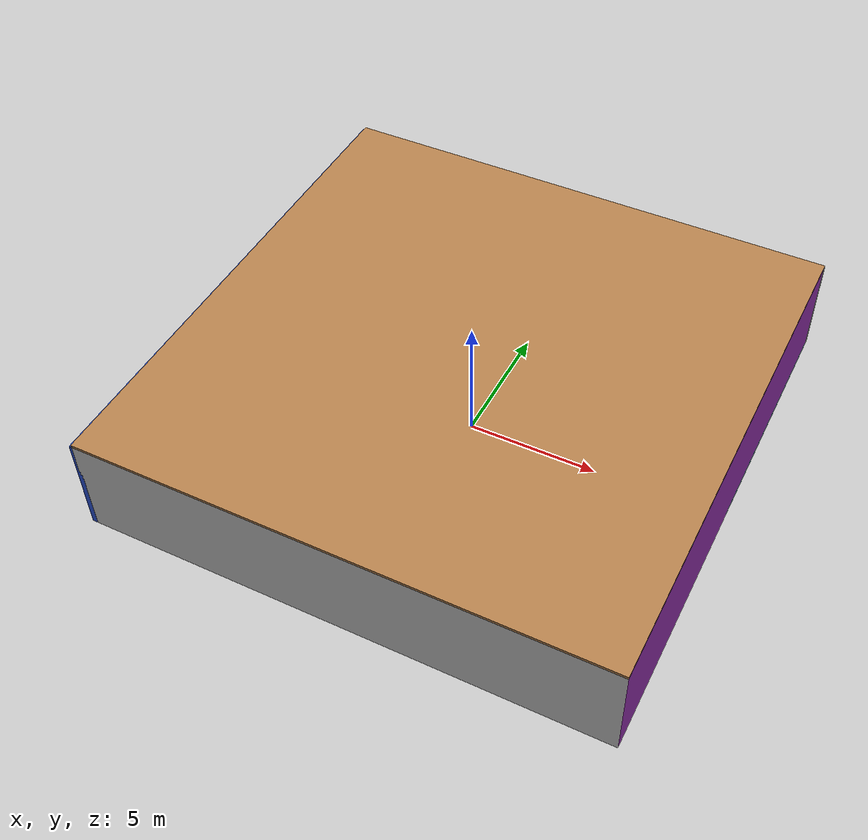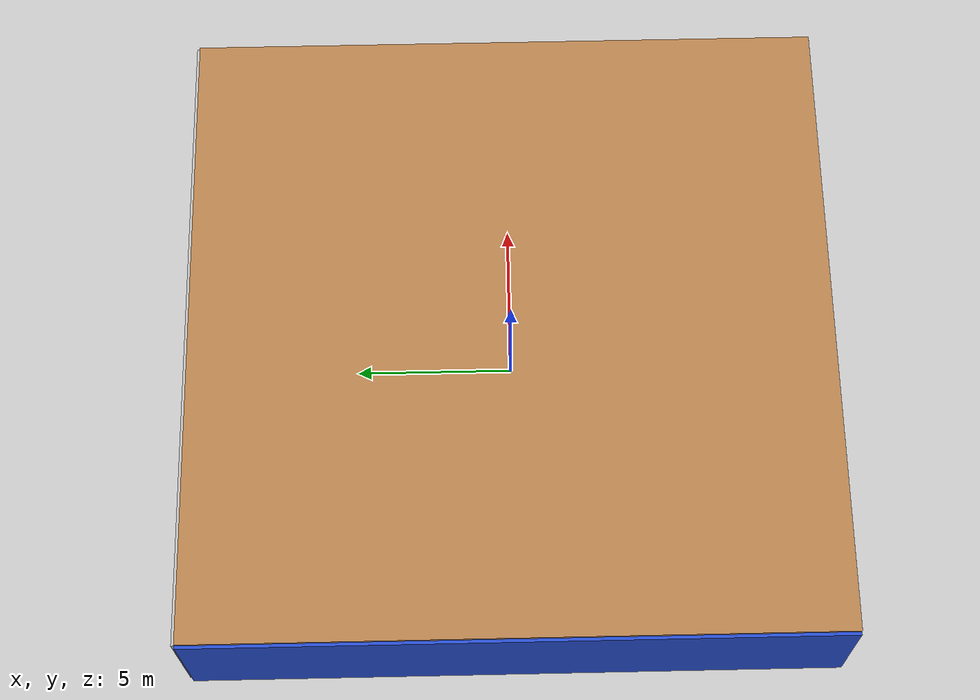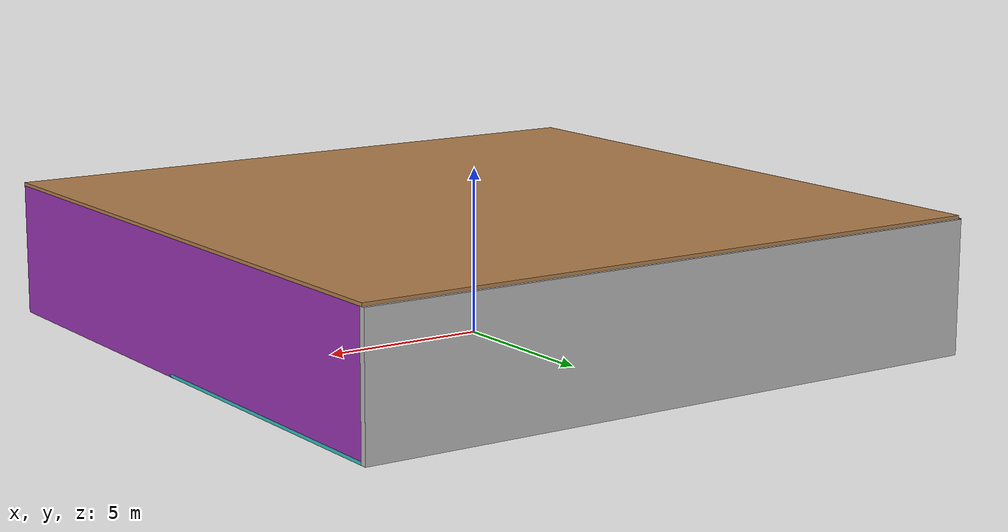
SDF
<sdf version="1.4">
 <world name="default">
  <physics type="ode">
   <max_step_size>0.001</max_step_size>
   <real_time_factor>1</real_time_factor>
   <real_time_update_rate>1000</real_time_update_rate>
   <gravity>0 0 -9.8</gravity>
  </physics>
  <scene><ambient>0.4 0.4 0.4 1</ambient><background>0.7 0.7 0.7 1</background><shadows>1</shadows></scene>
  <model name="Surrounding">
   <static>1</static>
   <link name="Ceiling">
    <collision name="Ceiling_Collision"><geometry><box><size>20 20 0.1</size></box></geometry></collision>
    <visual name="Ceiling_Visual">
     <geometry><box><size>20 20 0.1</size></box></geometry>
     <material>
      <script><uri>file://media/materials/scripts/gazebo.material</uri><name>Gazebo/Wood</name></script>
     </material>
    </visual>
    <pose>0 0 4.05 0 0 0</pose>
   </link>
   <link name="Wall_South">
    <collision name="Wall_South_Collision">
     <geometry><box><size>20 0 4</size></box></geometry>
     <pose>0 0 2 0 -0 0</pose>
    </collision>
    <visual name="Wall_South_Visual">
     <pose>0 0 2 0 -0 0</pose>
     <geometry><box><size>20 0 4</size></box></geometry>
     <material>
      <script><uri>file://media/materials/scripts/gazebo.material</uri><name>Gazebo/LightOn</name></script>
     </material>
    </visual>
    <velocity_decay><linear>0</linear><angular>0</angular></velocity_decay>
    <pose>0 -10 0 0 -0 0</pose>
   </link>
   <link name="Wall_East">
    <collision name="Wall_21_Collision">
     <geometry><box><size>20 0 4</size></box></geometry>
     <pose>0 0 2 0 -0 0</pose>
    </collision>
    <visual name="Wall_21_Visual">
     <pose>0 0 2 0 -0 0</pose>
     <geometry><box><size>20 0 4</size></box></geometry>
     <material>
      <script><uri>file://media/materials/scripts/gazebo.material</uri><name>Gazebo/PurpleGlow</name></script>
     </material>
    </visual>
    <velocity_decay><linear>0</linear><angular>0</angular></velocity_decay>
    <pose>10 0 0 0 -0 1.5708</pose>
   </link>
   <link name="Wall_North">
    <collision name="Wall_22_Collision">
     <geometry><box><size>20 0.2 4</size></box></geometry>
     <pose>0 0 2 0 -0 0</pose>
    </collision>
    <visual name="Wall_22_Visual">
     <pose>0 0 2 0 -0 0</pose>
     <geometry><box><size>20 0.2 4</size></box></geometry>
     <material>
      <script><uri>file://media/materials/scripts/gazebo.material</uri><name>Gazebo/LightOff</name></script>
     </material>
    </visual>
    <velocity_decay><linear>0</linear><angular>0</angular></velocity_decay>
    <pose>0 10 0 0 -0 0</pose>
   </link>
   <link name="Wall_West">
    <collision name="Wall_23_Collision">
     <geometry><box><size>20 0.2 4</size></box></geometry>
     <pose>0 0 2 0 -0 0</pose>
    </collision>
    <visual name="Wall_23_Visual">
     <pose>0 0 2 0 -0 0</pose>
     <geometry><box><size>20 0.2 4</size></box></geometry>
     <material>
      <script><uri>file://media/materials/scripts/gazebo.material</uri><name>Gazebo/BlueGlow</name></script>
     </material>
    </visual>
    <velocity_decay><linear>0</linear><angular>0</angular></velocity_decay>
    <pose>-10 0 0 0 0 -1.5708</pose>
   </link>
   <link name="Ground_link">
    <collision name="collision">
     <pose>0 0 .05 0 -0 0</pose>
     <geometry><box><size>20 20 0.1</size></box></geometry>
    </collision>
    <visual name="visual">
     <pose>0 0 .05 0 -0 0</pose>
     <geometry><box><size>20 20 0.1</size></box></geometry>
     <material>
      <script>
       <uri>file://media/materials/scripts/gazebo.material</uri>
       <name>Gazebo/TurquoiseGlowOutline</name>
      </script>
     </material>
    </visual>
   </link>
   <static>1</static>
  </model>
  <spherical_coordinates>
   <surface_model>EARTH_WGS84</surface_model>
   <latitude_deg>0</latitude_deg>
   <longitude_deg>0</longitude_deg>
   <elevation>0</elevation>
   <heading_deg>0</heading_deg>
  </spherical_coordinates>
  <light name="lightball_0" type="diffuse">
   <diffuse>0.8 0.8 0.8 1</diffuse>
   <specular>0.2 0.2 0.2 1</specular>
   <attenuation>
    <range>100</range>
    <constant>0.7</constant>
    <linear>0.01</linear>
    <quadratic>0.001</quadratic>
   </attenuation>
   <direction>-0.5 0.1 -0.9</direction>
   <pose>-8.79319051593 -7.8025188038 3.12151193378 0 0 0</pose>
  </light>
  <light name="lightball_1" type="diffuse">
   <diffuse>0.8 0.8 0.8 1</diffuse>
   <specular>0.2 0.2 0.2 1</specular>
   <attenuation>
    <range>100</range>
    <constant>0.7</constant>
    <linear>0.01</linear>
    <quadratic>0.001</quadratic>
   </attenuation>
   <direction>-0.5 0.1 -0.9</direction>
   <pose>9.99589423227 8.72781780622 3.70874215465 0 0 0</pose>
  </light>
  <light name="lightball_2" type="diffuse">
   <diffuse>0.8 0.8 0.8 1</diffuse>
   <specular>0.2 0.2 0.2 1</specular>
   <attenuation>
    <range>100</range>
    <constant>0.7</constant>
    <linear>0.01</linear>
    <quadratic>0.001</quadratic>
   </attenuation>
   <direction>-0.5 0.1 -0.9</direction>
   <pose>6.01592344058 5.72320222203 3.2559672629 0 0 0</pose>
  </light>
  <light name="lightball_3" type="diffuse">
   <diffuse>0.8 0.8 0.8 1</diffuse>
   <specular>0.2 0.2 0.2 1</specular>
   <attenuation>
    <range>100</range>
    <constant>0.7</constant>
    <linear>0.01</linear>
    <quadratic>0.001</quadratic>
   </attenuation>
   <direction>-0.5 0.1 -0.9</direction>
   <pose>-2.37035448176 7.7391056273 1.36925725904 0 0 0</pose>
  </light>
  <light name="lightball_4" type="diffuse">
   <diffuse>0.8 0.8 0.8 1</diffuse>
   <specular>0.2 0.2 0.2 1</specular>
   <attenuation>
    <range>100</range>
    <constant>0.7</constant>
    <linear>0.01</linear>
    <quadratic>0.001</quadratic>
   </attenuation>
   <direction>-0.5 0.1 -0.9</direction>
   <pose>8.24571197818 7.60956473737 0.770016695118 0 0 0</pose>
  </light>
  <light name="lightball_5" type="diffuse">
   <diffuse>0.8 0.8 0.8 1</diffuse>
   <specular>0.2 0.2 0.2 1</specular>
   <attenuation>
    <range>100</range>
    <constant>0.7</constant>
    <linear>0.01</linear>
    <quadratic>0.001</quadratic>
   </attenuation>
   <direction>-0.5 0.1 -0.9</direction>
   <pose>-0.0524424972443 5.76571239832 3.48627071058 0 0 0</pose>
  </light>
  <light name="lightball_6" type="diffuse">
   <diffuse>0.8 0.8 0.8 1</diffuse>
   <specular>0.2 0.2 0.2 1</specular>
   <attenuation>
    <range>100</range>
    <constant>0.7</constant>
    <linear>0.01</linear>
    <quadratic>0.001</quadratic>
   </attenuation>
   <direction>-0.5 0.1 -0.9</direction>
   <pose>-1.28951050033 9.47763632607 1.14647981529 0 0 0</pose>
  </light>
  <light name="lightball_7" type="diffuse">
   <diffuse>0.8 0.8 0.8 1</diffuse>
   <specular>0.2 0.2 0.2 1</specular>
   <attenuation>
    <range>100</range>
    <constant>0.7</constant>
    <linear>0.01</linear>
    <quadratic>0.001</quadratic>
   </attenuation>
   <direction>-0.5 0.1 -0.9</direction>
   <pose>-1.58358358944 -4.84800595057 3.06103249403 0 0 0</pose>
  </light>
  <include>
   <uri>model://robocup_3Dsim_goal</uri>
   <pose>-6.64061728792 -2.12787488536 0 0 0 2.64621970859</pose>
  </include>
  <include>
   <uri>model://textured_shapes</uri>
   <pose>2.24635023508 4.15416074662 0 0 0 1.74267086243</pose>
  </include>
  <include>
   <uri>model://construction_cone</uri>
   <pose>4.54262718231 -4.7277948785 0 0 0 1.71208500316</pose>
  </include>
  <include><uri>model://table</uri><pose>8.37994719992 -0.554686085138 0 0 0 1.50204809547</pose></include>
  <include><uri>model://cabinet</uri><pose>7.130175503 2.61627092961 0 0 0 2.03246296392</pose></include>
 </world>
</sdf>

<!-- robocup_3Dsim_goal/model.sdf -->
<sdf version="1.5">
  <model name="robocup_3d_goal">
    <static>true</static>
    <link name="left_post">
      <pose>0 1.05 0.45 0 0 0</pose>
      <collision name="collision">
        <geometry>
          <cylinder>
            <radius>0.05</radius>
            <length>0.9</length>
          </cylinder>
        </geometry>
      </collision>
      <visual name="visual">
        <geometry>
          <cylinder>
            <radius>0.05</radius>
            <length>0.9</length>
          </cylinder>
        </geometry>
        <material>
          <script>
            <uri>file://media/materials/scripts/gazebo.material</uri>
            <name>Gazebo/ZincYellow</name>
          </script>
        </material>
      </visual>
    </link>
    <link name="left_support_horiz_lower">
      <pose>0.30 1.05 0.01 0 0 0</pose>
      <collision name="collision">
        <geometry>
          <box>
            <size>0.50 0.02 0.02</size>
          </box>
        </geometry>
      </collision>
      <visual name="visual">
        <geometry>
          <box>
            <size>0.50 0.02 0.02</size>
          </box>
        </geometry>
        <material>
          <script>
            <uri>file://media/materials/scripts/gazebo.material</uri>
            <name>Gazebo/White</name>
          </script>
        </material>
      </visual>
    </link>
    <link name="left_support_horiz_upper">
      <pose>0.30 1.05 0.79 0 0 0</pose>
      <collision name="collision">
        <geometry>
          <box>
            <size>0.50 0.02 0.02</size>
          </box>
        </geometry>
      </collision>
      <visual name="visual">
        <geometry>
          <box>
            <size>0.50 0.02 0.02</size>
          </box>
        </geometry>
        <material>
          <script>
            <uri>file://media/materials/scripts/gazebo.material</uri>
            <name>Gazebo/White</name>
          </script>
        </material>
      </visual>
    </link>
    <link name="left_support_vertical">
      <pose>0.56 1.05 0.4 0 1.5708 0</pose>
      <collision name="collision">
        <geometry>
          <box>
            <size>0.80 0.02 0.02</size>
          </box>
        </geometry>
      </collision>
      <visual name="visual">
        <geometry>
          <box>
            <size>0.80 0.02 0.02</size>
          </box>
        </geometry>
        <material>
          <script>
            <uri>file://media/materials/scripts/gazebo.material</uri>
            <name>Gazebo/White</name>
          </script>
        </material>
      </visual>
    </link>
    <link name="right_support_horiz_lower">
      <pose>0.30 -1.05 0.01 0 0 0</pose>
      <collision name="collision">
        <geometry>
          <box>
            <size>0.50 0.02 0.02</size>
          </box>
        </geometry>
      </collision>
      <visual name="visual">
        <geometry>
          <box>
            <size>0.50 0.02 0.02</size>
          </box>
        </geometry>
        <material>
          <script>
            <uri>file://media/materials/scripts/gazebo.material</uri>
            <name>Gazebo/White</name>
          </script>
        </material>
      </visual>
    </link>
    <link name="right_support_horiz_upper">
      <pose>0.30 -1.05 0.79 0 0 0</pose>
      <collision name="collision">
        <geometry>
          <box>
            <size>0.50 0.02 0.02</size>
          </box>
        </geometry>
      </collision>
      <visual name="visual">
        <geometry>
          <box>
            <size>0.50 0.02 0.02</size>
          </box>
        </geometry>
        <material>
          <script>
            <uri>file://media/materials/scripts/gazebo.material</uri>
            <name>Gazebo/White</name>
          </script>
        </material>
      </visual>
    </link>
    <link name="right_support_vertical">
      <pose>0.56 -1.05 0.4 0 1.5708 0</pose>
      <collision name="collision">
        <geometry>
          <box>
            <size>0.80 0.02 0.02</size>
          </box>
        </geometry>
      </collision>
      <visual name="visual">
        <geometry>
          <box>
            <size>0.80 0.02 0.02</size>
          </box>
        </geometry>
        <material>
          <script>
            <uri>file://media/materials/scripts/gazebo.material</uri>
            <name>Gazebo/White</name>
          </script>
        </material>
      </visual>
    </link>
    <link name="center_support_horiz_lower">
      <pose>0.56 0 0.01 0 1.5708 0</pose>
      <collision name="collision">
        <geometry>
          <box>
            <size>0.02 2.08 0.02</size>
          </box>
        </geometry>
      </collision>
      <visual name="visual">
        <geometry>
          <box>
            <size>0.02 2.08 0.02</size>
          </box>
        </geometry>
        <material>
          <script>
            <uri>file://media/materials/scripts/gazebo.material</uri>
            <name>Gazebo/White</name>
          </script>
        </material>
      </visual>
    </link>
    <link name="center_support_horiz_upper">
      <pose>0.56 0 0.79 0 1.5708 0</pose>
      <collision name="collision">
        <geometry>
          <box>
            <size>0.02 2.08 0.02</size>
          </box>
        </geometry>
      </collision>
      <visual name="visual">
        <geometry>
          <box>
            <size>0.02 2.08 0.02</size>
          </box>
        </geometry>
        <material>
          <script>
            <uri>file://media/materials/scripts/gazebo.material</uri>
            <name>Gazebo/White</name>
          </script>
        </material>
      </visual>
    </link>
    <link name="right_post">
      <pose>0 -1.05 0.45 0 0 0</pose>
      <collision name="collision">
        <geometry>
          <cylinder>
            <radius>0.05</radius>
            <length>0.9</length>
          </cylinder>
        </geometry>
      </collision>
      <visual name="visual">
        <geometry>
          <cylinder>
            <radius>0.05</radius>
            <length>0.9</length>
          </cylinder>
        </geometry>
        <material>
          <script>
            <uri>file://media/materials/scripts/gazebo.material</uri>
            <name>Gazebo/ZincYellow</name>
          </script>
        </material>
      </visual>
    </link>
    <link name="crossbar">
      <pose>0 0 0.85 1.57 1.57 0</pose>
      <collision name="collision">
        <geometry>
          <cylinder>
            <radius>0.05</radius>
            <length>2.0</length>
          </cylinder>
        </geometry>
      </collision>
      <visual name="visual">
        <geometry>
          <cylinder>
            <radius>0.05</radius>
            <length>2.0</length>
          </cylinder>
        </geometry>
        <material>
          <script>
            <uri>file://media/materials/scripts/gazebo.material</uri>
            <name>Gazebo/ZincYellow</name>
          </script>
        </material>
      </visual>
    </link>
    <link name="center_net">
      <pose>0.56 0 0.40 0 0 0</pose>
      <collision name="collision">
        <geometry>
          <box>
            <size>0.01 2.1 0.80</size>
          </box>
        </geometry>
      </collision>
      <visual name="visual">
        <geometry>
          <box>
            <size>0.01 2.1 0.80</size>
          </box>
        </geometry>
        <material>
          <script>
            <uri>model://../model_source/models/robocup09_spl_field/materials/scripts/</uri>
            <uri>model://../model_source/models/robocup09_spl_field/materials/textures/</uri>
            <name>RoboCup/Net</name>
          </script>
        </material>
      </visual>
    </link>
    <link name="left_net">
      <pose>0.30 1.05 0.40 0 0 0</pose>
      <collision name="collision">
        <geometry>
          <box>
            <size>0.50 0.01 0.76</size>
          </box>
        </geometry>
      </collision>
      <visual name="visual">
        <geometry>
          <box>
            <size>0.50 0.01 0.76</size>
          </box>
        </geometry>
        <material>
          <script>
            <uri>model://../model_source/models/robocup09_spl_field/materials/scripts/</uri>
            <uri>model://../model_source/models/robocup09_spl_field/materials/textures/</uri>
            <name>RoboCup/Net</name>
          </script>
        </material>
      </visual>
    </link>
    <link name="right_net">
      <pose>0.30 -1.05 0.40 0 0 0</pose>
      <collision name="collision">
        <geometry>
          <box>
            <size>0.50 0.01 0.76</size>
          </box>
        </geometry>
      </collision>
      <visual name="visual">
        <geometry>
          <box>
            <size>0.50 0.01 0.76</size>
          </box>
        </geometry>
        <material>
          <script>
            <uri>model://../model_source/models/robocup09_spl_field/materials/scripts/</uri>
            <uri>model://../model_source/models/robocup09_spl_field/materials/textures/</uri>
            <name>RoboCup/Net</name>
          </script>
        </material>
      </visual>
    </link>
  </model>
</sdf>

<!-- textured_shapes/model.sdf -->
<sdf version="1.6">
  <model name="textured_shapes">
    <pose>0 0 0.5 0 0 0</pose>
    <link name="box">
      <pose>0 -1.5 0 0 0 0</pose>
      <collision name="collision">
        <geometry>
          <box>
            <size>1 1 1</size>
          </box>
        </geometry>
      </collision>
      <visual name="visual">
        <geometry>
          <box>
            <size>1 1 1</size>
          </box>
        </geometry>
        <material>
          <script>
            <uri>model://../model_source/models/textured_shapes/materials/scripts</uri>
            <uri>model://../model_source/models/textured_shapes/materials/textures</uri>
            <name>TexturedShape/Squares</name>
          </script>
        </material>
      </visual>
    </link>
    <link name="sphere">
      <collision name="collision">
        <geometry>
          <sphere>
            <radius>0.5</radius>
          </sphere>
        </geometry>
      </collision>
      <visual name="visual">
        <geometry>
          <sphere>
            <radius>0.5</radius>
          </sphere>
        </geometry>
        <material>
          <script>
            <uri>model://../model_source/models/textured_shapes/materials/scripts</uri>
            <uri>model://../model_source/models/textured_shapes/materials/textures</uri>
            <name>TexturedShape/Squares</name>
          </script>
        </material>
      </visual>
    </link>
    <link name="cylinder">
      <pose>0 1.5 0 0 0 0</pose>
      <collision name="collision">
        <geometry>
          <cylinder>
            <radius>0.5</radius>
            <length>1</length>
          </cylinder>
        </geometry>
      </collision>
      <visual name="visual">
        <geometry>
          <cylinder>
            <radius>0.5</radius>
            <length>1</length>
          </cylinder>
        </geometry>
        <material>
          <script>
            <uri>model://../model_source/models/textured_shapes/materials/scripts</uri>
            <uri>model://../model_source/models/textured_shapes/materials/textures</uri>
            <name>TexturedShape/Squares</name>
          </script>
        </material>
      </visual>
    </link>
  </model>
</sdf>

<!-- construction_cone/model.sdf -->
<sdf version="1.5">
  <model name="Construction Cone">
    <link name="link">
      <collision name="collision">
        <geometry>
          <mesh>
            <scale>10 10 10</scale>
            <uri>file://isr-testbed/construction_cone/meshes/construction_cone.dae</uri>
          </mesh>
        </geometry>
      </collision>
      <visual name="visual">
        <geometry>
          <mesh>
            <scale>10 10 10</scale>
            <uri>file://isr-testbed/construction_cone/meshes/construction_cone.dae</uri>
          </mesh>
        </geometry>
      </visual>
    </link>
  </model>
</sdf>

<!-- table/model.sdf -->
<sdf version="1.5">
  <model name="table">
    <static>true</static>
    <link name="link">
      <collision name="surface">
        <pose>0 0 1.0 0 0 0</pose>
        <geometry>
          <box>
            <size>1.5 0.8 0.03</size>
          </box>
        </geometry>
        <surface>
          <friction>
            <ode>
              <mu>0.6</mu>
              <mu2>0.6</mu2>
            </ode>
          </friction>
        </surface>
      </collision>
      <visual name="visual1">
        <pose>0 0 1.0 0 0 0</pose>
        <geometry>
          <box>
            <size>1.5 0.8 0.03</size>
          </box>
        </geometry>
        <material>
          <script>
            <uri>model://media/materials/scripts/gazebo.material</uri>
            <name>Gazebo/Wood</name>
          </script>
        </material>
      </visual>
      <collision name="front_left_leg">
        <pose>0.68 0.38 0.5 0 0 0</pose>
        <geometry>
          <cylinder>
            <radius>0.02</radius>
            <length>1.0</length>
          </cylinder>
        </geometry>
      </collision>
      <visual name="front_left_leg">
        <pose>0.68 0.38 0.5 0 0 0</pose>
        <geometry>
          <cylinder>
            <radius>0.02</radius>
            <length>1.0</length>
          </cylinder>
        </geometry>
        <material>
          <script>
            <uri>model://media/materials/scripts/gazebo.material</uri>
            <name>Gazebo/Grey</name>
          </script>
        </material>
      </visual>
      <collision name="front_right_leg">
        <pose>0.68 -0.38 0.5 0 0 0</pose>
        <geometry>
          <cylinder>
            <radius>0.02</radius>
            <length>1.0</length>
          </cylinder>
        </geometry>
      </collision>
      <visual name="front_right_leg">
        <pose>0.68 -0.38 0.5 0 0 0</pose>
        <geometry>
          <cylinder>
            <radius>0.02</radius>
            <length>1.0</length>
          </cylinder>
        </geometry>
        <material>
          <script>
            <uri>model://media/materials/scripts/gazebo.material</uri>
            <name>Gazebo/Grey</name>
          </script>
        </material>
      </visual>
      <collision name="back_right_leg">
        <pose>-0.68 -0.38 0.5 0 0 0</pose>
        <geometry>
          <cylinder>
            <radius>0.02</radius>
            <length>1.0</length>
          </cylinder>
        </geometry>
      </collision>
      <visual name="back_right_leg">
        <pose>-0.68 -0.38 0.5 0 0 0</pose>
        <geometry>
          <cylinder>
            <radius>0.02</radius>
            <length>1.0</length>
          </cylinder>
        </geometry>
        <material>
          <script>
            <uri>model://media/materials/scripts/gazebo.material</uri>
            <name>Gazebo/Grey</name>
          </script>
        </material>
      </visual>
      <collision name="back_left_leg">
        <pose>-0.68 0.38 0.5 0 0 0</pose>
        <geometry>
          <cylinder>
            <radius>0.02</radius>
            <length>1.0</length>
          </cylinder>
        </geometry>
      </collision>
      <visual name="back_left_leg">
        <pose>-0.68 0.38 0.5 0 0 0</pose>
        <geometry>
          <cylinder>
            <radius>0.02</radius>
            <length>1.0</length>
          </cylinder>
        </geometry>
        <material>
          <script>
            <uri>model://media/materials/scripts/gazebo.material</uri>
            <name>Gazebo/Grey</name>
          </script>
        </material>
      </visual>
    </link>
  </model>
</sdf>

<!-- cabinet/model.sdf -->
<sdf version="1.5">
  <model name="cabinet">
    <static>true</static>
    <link name="cabinet_bottom_plate">
      <inertial>
        <pose>0 0 -1 0 0 0</pose>
        <inertia>
          <ixx>2.050000</ixx>
          <ixy>0</ixy>
          <ixz>0</ixz>
          <iyy>2.050000</iyy>
          <iyz>0</iyz>
          <izz>2.050000</izz>
        </inertia>
        <mass>25.000000</mass>
      </inertial>
      <collision name="cabinet_bottom_plate_geom">
        <pose>0 0 0.010000 0 0 0</pose>
        <geometry>
          <box>
            <size>0.450000 0.450000 0.020000</size>
          </box>
        </geometry>
      </collision>
      <visual name="cabinet_bottom_plate_geom_visual">
        <pose>0 0 0.010000 0 0 0</pose>
        <geometry>
          <box>
            <size>0.450000 0.450000 0.020000</size>
          </box>
        </geometry>
        <material>
          <script>
            <uri>model://media/materials/scripts/gazebo.material</uri>
            <name>Gazebo/Wood</name>
          </script>
        </material>
      </visual>
      <collision name="cabinet_bottom_plate_geom_cabinet_back_plate">
        <pose>0.235000 0 0.510000 0 0 0</pose>
        <geometry>
          <box>
            <size>0.020000 0.450000 1.020000</size>
          </box>
        </geometry>
      </collision>
      <visual name="cabinet_bottom_plate_geom_cabinet_back_plate_visual">
        <pose>0.235000 0 0.510000 0 0 0</pose>
        <geometry>
          <box>
            <size>0.020000 0.450000 1.020000</size>
          </box>
        </geometry>
        <material>
          <script>
            <uri>model://media/materials/scripts/gazebo.material</uri>
            <name>Gazebo/Wood</name>
          </script>
        </material>
      </visual>
      <collision name="cabinet_bottom_plate_geom_cabinet_left_plate">
        <pose>0 0.235000 0.510000 0 0 0</pose>
        <geometry>
          <box>
            <size>0.450000 0.020000 1.020000</size>
          </box>
        </geometry>
      </collision>
      <visual name="cabinet_bottom_plate_geom_cabinet_left_plate_visual">
        <pose>0 0.235000 0.510000 0 0 0</pose>
        <geometry>
          <box>
            <size>0.450000 0.020000 1.020000</size>
          </box>
        </geometry>
        <material>
          <script>
            <uri>model://media/materials/scripts/gazebo.material</uri>
            <name>Gazebo/Wood</name>
          </script>
        </material>
      </visual>
      <collision name="cabinet_bottom_plate_geom_cabinet_middle_plate">
        <pose>0 0 0.510000 0 0 0</pose>
        <geometry>
          <box>
            <size>0.450000 0.450000 0.020000</size>
          </box>
        </geometry>
      </collision>
      <visual name="cabinet_bottom_plate_geom_cabinet_middle_plate_visual">
        <pose>0 0 0.510000 0 0 0</pose>
        <geometry>
          <box>
            <size>0.450000 0.450000 0.020000</size>
          </box>
        </geometry>
        <material>
          <script>
            <uri>model://media/materials/scripts/gazebo.material</uri>
            <name>Gazebo/Wood</name>
          </script>
        </material>
      </visual>
      <collision name="cabinet_bottom_plate_geom_cabinet_right_plate">
        <pose>0 -0.235000 0.510000 0 0 0</pose>
        <geometry>
          <box>
            <size>0.450000 0.020000 1.020000</size>
          </box>
        </geometry>
      </collision>
      <visual name="cabinet_bottom_plate_geom_cabinet_right_plate_visual">
        <pose>0 -0.235000 0.510000 0 0 0</pose>
        <geometry>
          <box>
            <size>0.450000 0.020000 1.020000</size>
          </box>
        </geometry>
        <material>
          <script>
            <uri>model://media/materials/scripts/gazebo.material</uri>
            <name>Gazebo/Wood</name>
          </script>
        </material>
      </visual>
      <collision name="cabinet_bottom_plate_geom_cabinet_top_plate">
        <pose>0 0 1.010000 0 0 0</pose>
        <geometry>
          <box>
            <size>0.450000 0.450000 0.020000</size>
          </box>
        </geometry>
      </collision>
      <visual name="cabinet_bottom_plate_geom_cabinet_top_plate_visual">
        <pose>0 0 1.010000 0 0 0</pose>
        <geometry>
          <box>
            <size>0.450000 0.450000 0.020000</size>
          </box>
        </geometry>
        <material>
          <script>
            <uri>model://media/materials/scripts/gazebo.material</uri>
            <name>Gazebo/Wood</name>
          </script>
        </material>
      </visual>
    </link>
  </model>
</sdf>
